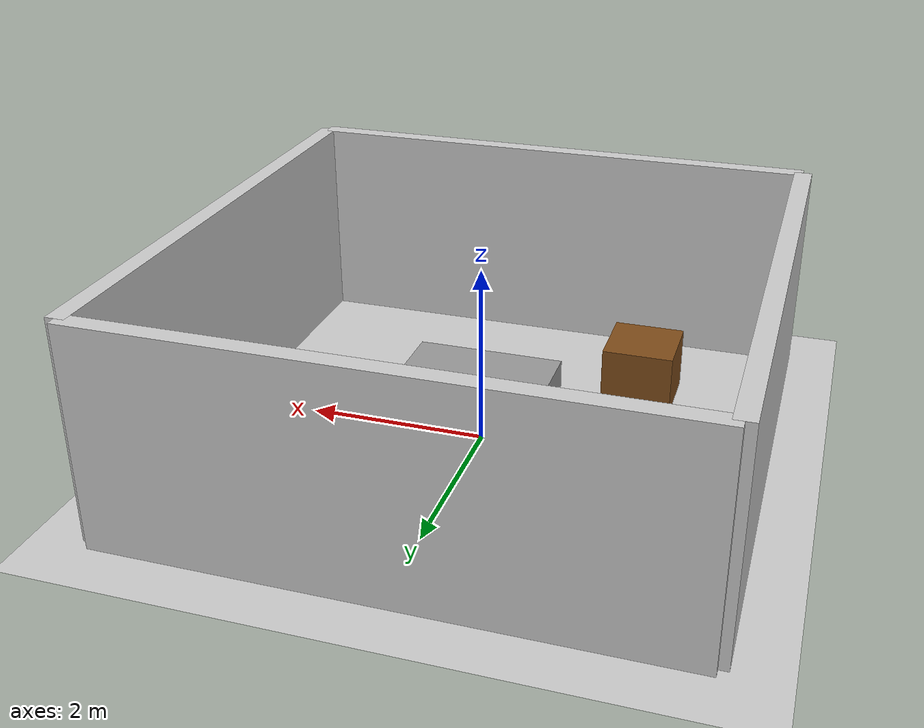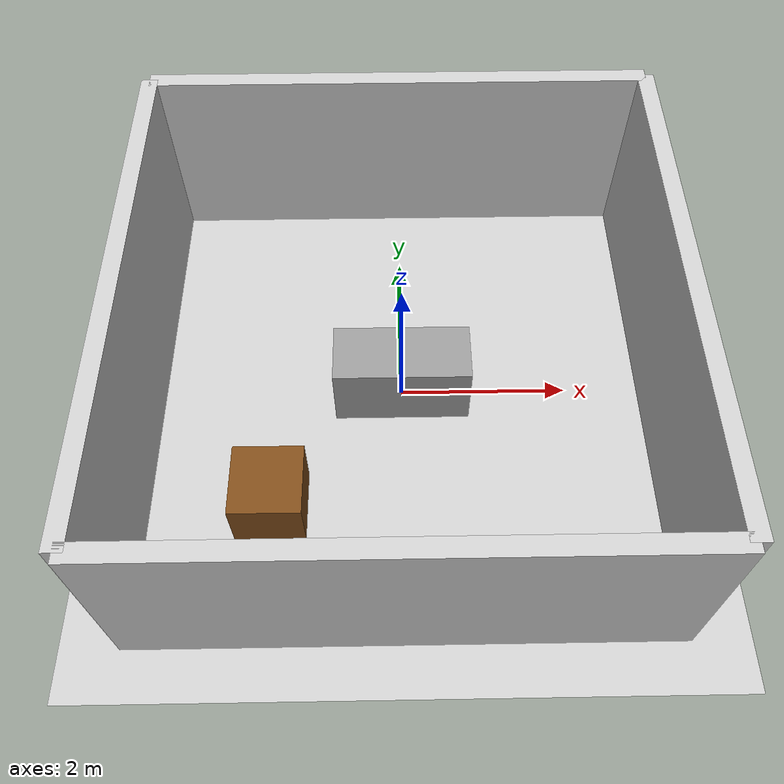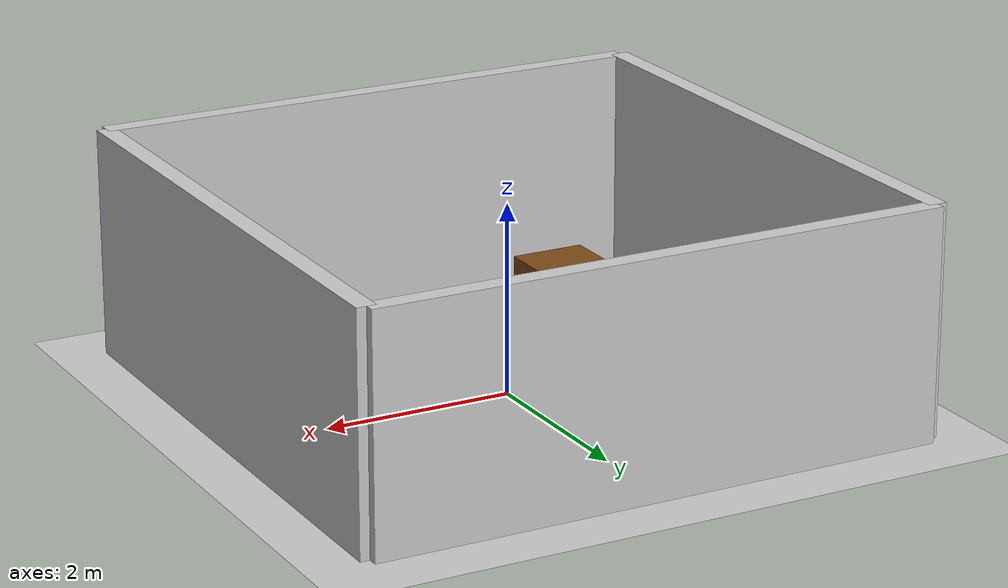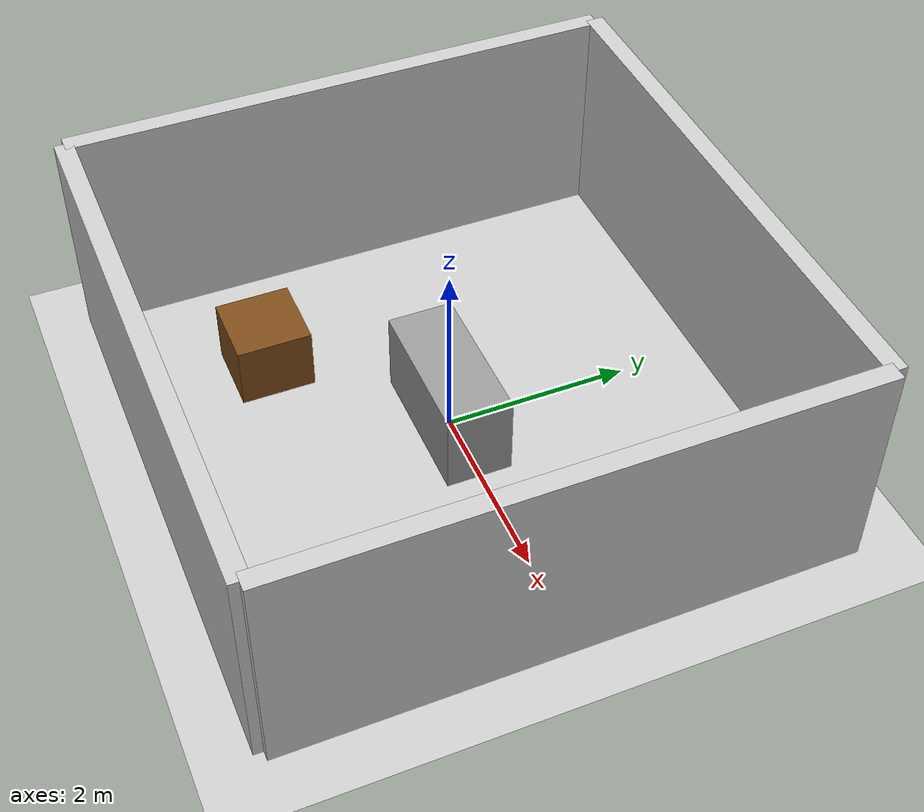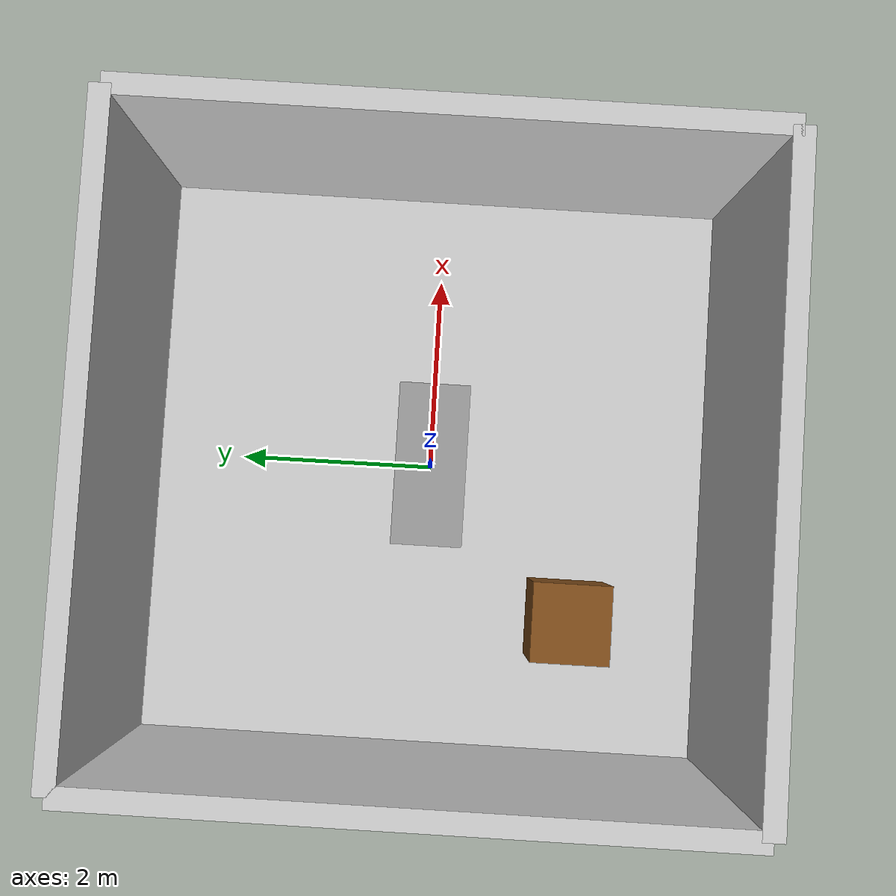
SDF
<sdf version="1.8">
 <world name="kitchen">
  <gravity>0 0 -9.81</gravity>
  <physics name="1ms" type="ode">
   <real_time_update_rate>1000</real_time_update_rate>
   <max_step_size>0.001</max_step_size>
   <real_time_factor>1</real_time_factor>
   <ode>
    <solver>
     <type>quick</type>
     <iters>150</iters>
     <precon_iters>0</precon_iters>
     <sor>1.3999999999999999</sor>
     <use_dynamic_moi_rescaling>true</use_dynamic_moi_rescaling>
    </solver>
    <constraints>
     <cfm>1.0000000000000001e-05</cfm>
     <erp>0.20000000000000001</erp>
     <contact_max_correcting_vel>2000</contact_max_correcting_vel>
     <contact_surface_layer>0.01</contact_surface_layer>
    </constraints>
   </ode>
  </physics>
  <plugin filename="gz-sim-physics-system" name="gz::sim::systems::Physics"/>
  <plugin filename="gz-sim-user-commands-system" name="gz::sim::systems::UserCommands"/>
  <plugin filename="gz-sim-scene-broadcaster-system" name="gz::sim::systems::SceneBroadcaster"/>
  <plugin filename="gz-sim-sensors-system" name="gz::sim::systems::Sensors">
   <render_engine>ogre2</render_engine>
  </plugin>
  <plugin filename="gz-sim-imu-system" name="gz::sim::systems::Imu"/>
  <plugin filename="gz-sim-contact-system" name="gz::sim::systems::Contact"/>
  <scene><ambient>0.4 0.4 0.4</ambient><background>0.7 0.7 0.7</background></scene>
  <light type="directional" name="sun">
   <pose>0 0 10 0 0 0</pose>
   <diffuse>0.8 0.8 0.8 1</diffuse>
   <specular>0.2 0.2 0.2 1</specular>
   <direction>-0.5 0.1 -1</direction>
  </light>
  <model name="ground_plane">
   <static>true</static>
   <link name="link">
    <collision name="collision"><geometry><plane><normal>0 0 1</normal></plane></geometry></collision>
    <visual name="visual">
     <geometry><plane><normal>0 0 1</normal><size>100 100</size></plane></geometry>
     <material><ambient>0.8 0.8 0.8 1</ambient><diffuse>0.8 0.8 0.8 1</diffuse></material>
    </visual>
   </link>
  </model>
  <model name="wall_back">
   <static>true</static>
   <pose>3.0 0 1.2 0 0 0</pose>
   <link name="link">
    <collision name="collision"><geometry><box><size>0.2 6.0 2.4</size></box></geometry></collision>
    <visual name="visual">
     <geometry><box><size>0.2 6.0 2.4</size></box></geometry>
     <material><ambient>0.8 0.8 0.8</ambient><diffuse>0.8 0.8 0.8</diffuse></material>
    </visual>
   </link>
  </model>
  <model name="wall_front">
   <static>true</static>
   <pose>-3.0 0 1.2 0 0 0</pose>
   <link name="link">
    <collision name="collision"><geometry><box><size>0.2 6.0 2.4</size></box></geometry></collision>
    <visual name="visual">
     <geometry><box><size>0.2 6.0 2.4</size></box></geometry>
     <material><ambient>0.8 0.8 0.8</ambient><diffuse>0.8 0.8 0.8</diffuse></material>
    </visual>
   </link>
  </model>
  <model name="wall_left">
   <static>true</static>
   <pose>0 3.0 1.2 0 0 1.5708</pose>
   <link name="link">
    <collision name="collision"><geometry><box><size>0.2 6.0 2.4</size></box></geometry></collision>
    <visual name="visual">
     <geometry><box><size>0.2 6.0 2.4</size></box></geometry>
     <material><ambient>0.8 0.8 0.8</ambient><diffuse>0.8 0.8 0.8</diffuse></material>
    </visual>
   </link>
  </model>
  <model name="wall_right">
   <static>true</static>
   <pose>0 -3.0 1.2 0 0 1.5708</pose>
   <link name="link">
    <collision name="collision"><geometry><box><size>0.2 6.0 2.4</size></box></geometry></collision>
    <visual name="visual">
     <geometry><box><size>0.2 6.0 2.4</size></box></geometry>
     <material><ambient>0.8 0.8 0.8</ambient><diffuse>0.8 0.8 0.8</diffuse></material>
    </visual>
   </link>
  </model>
  <model name="kitchen_island">
   <static>true</static>
   <pose>0 0 0.45 0 0 0</pose>
   <link name="link">
    <collision name="collision"><geometry><box><size>1.6 0.7 0.9</size></box></geometry></collision>
    <visual name="visual">
     <geometry><box><size>1.6 0.7 0.9</size></box></geometry>
     <material><ambient>0.6 0.6 0.6</ambient><diffuse>0.6 0.6 0.6</diffuse></material>
    </visual>
   </link>
  </model>
  <model name="table">
   <static>true</static>
   <pose>-1.5 -1.5 0.35 0 0 0</pose>
   <link name="link">
    <collision name="collision"><geometry><box><size>0.8 0.8 0.7</size></box></geometry></collision>
    <visual name="visual">
     <geometry><box><size>0.8 0.8 0.7</size></box></geometry>
     <material><ambient>0.5 0.3 0.1</ambient><diffuse>0.5 0.3 0.1</diffuse></material>
    </visual>
   </link>
  </model>
 </world>
</sdf>
